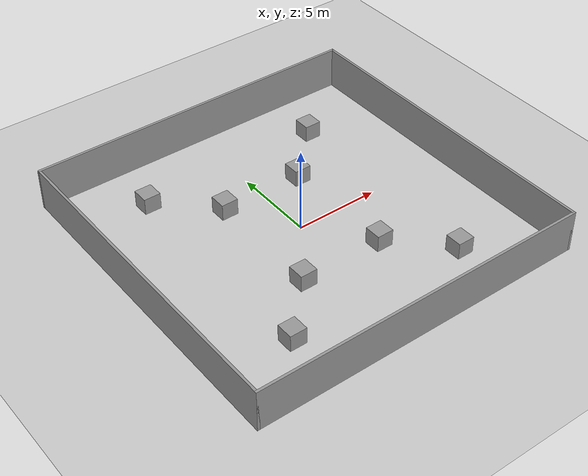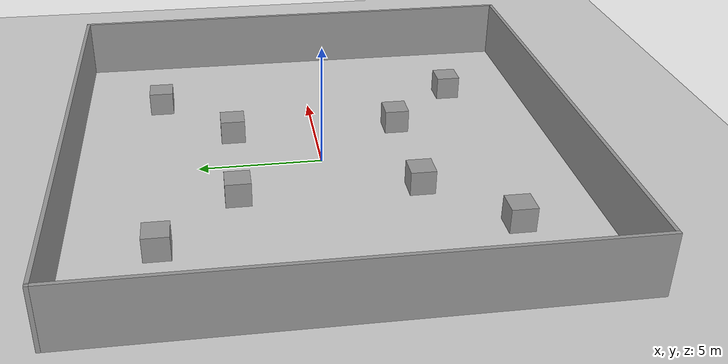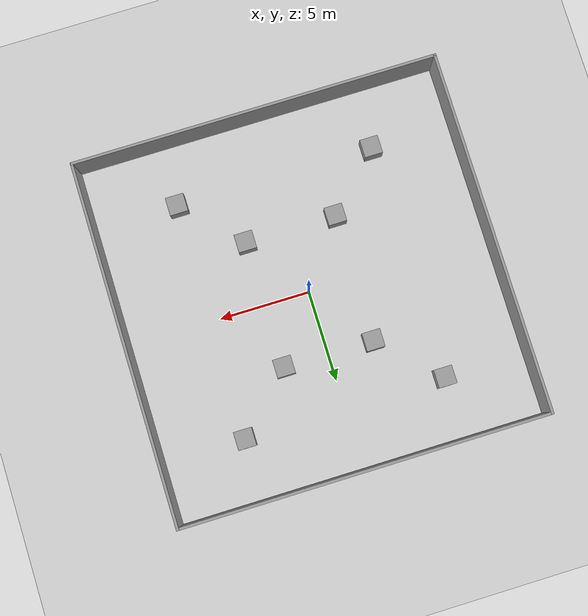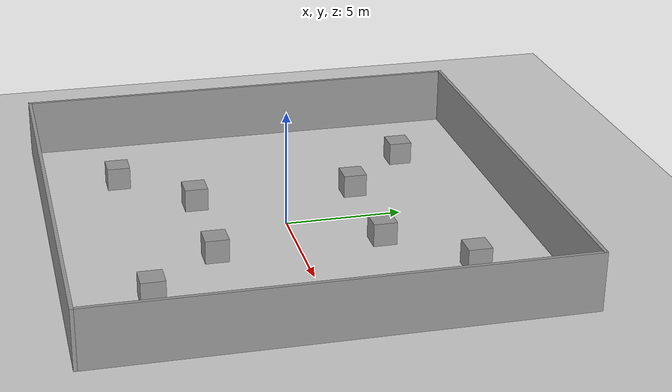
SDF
<sdf version="1.6">
 <world name="default">
  <light name="sun" type="directional">
   <pose>0 0 10 0 -0 0</pose>
   <diffuse>0.8 0.8 0.8 1</diffuse>
   <specular>0.2 0.2 0.2 1</specular>
   <attenuation>
    <range>1000</range>
    <constant>0.9</constant>
    <linear>0.01</linear>
    <quadratic>0.001</quadratic>
   </attenuation>
   <direction>-0.5 0.1 -0.9</direction>
  </light>
  <model name="ground_plane">
   <static>1</static>
   <link name="link">
    <collision name="collision">
     <geometry><plane><normal>0 0 1</normal><size>100 100</size></plane></geometry>
     <surface>
      <contact><collide_bitmask>65535</collide_bitmask></contact>
      <friction><ode><mu>100</mu><mu2>50</mu2></ode></friction>
     </surface>
    </collision>
    <visual name="visual">
     <cast_shadows>0</cast_shadows>
     <geometry><plane><normal>0 0 1</normal><size>100 100</size></plane></geometry>
     <material>
      <script><uri>file://media/materials/scripts/gazebo.material</uri><name>Gazebo/Grey</name></script>
     </material>
    </visual>
   </link>
  </model>
  <gravity>0 0 -9.8</gravity>
  <magnetic_field>6e-06 2.3e-05 -4.2e-05</magnetic_field>
  <physics name="default_physics" default="0" type="ode">
   <max_step_size>0.0015</max_step_size>
   <real_time_factor>1</real_time_factor>
   <real_time_update_rate>900</real_time_update_rate>
  </physics>
  <scene><ambient>0.4 0.4 0.4 1</ambient><background>0.7 0.7 0.7 1</background><shadows>0</shadows></scene>
  <audio><device>default</device></audio>
  <spherical_coordinates>
   <surface_model>EARTH_WGS84</surface_model>
   <latitude_deg>0</latitude_deg>
   <longitude_deg>0</longitude_deg>
   <elevation>0</elevation>
   <heading_deg>0</heading_deg>
  </spherical_coordinates>
  <model name="box">
   <pose>0.006251 0.010468 0 0 -0 0</pose>
   <link name="Wall_40">
    <collision name="Wall_40_Collision">
     <geometry><box><size>0.16 0.15 2.5</size></box></geometry>
     <pose>0 0 1.25 0 -0 0</pose>
    </collision>
    <visual name="Wall_40_Visual">
     <pose>0 0 1.25 0 -0 0</pose>
     <geometry><box><size>0.16 0.15 2.5</size></box></geometry>
     <material>
      <script><uri>file://media/materials/scripts/gazebo.material</uri><name>Gazebo/Grey</name></script>
      <ambient>1 1 1 1</ambient>
     </material>
     <meta><layer>0</layer></meta>
    </visual>
    <pose>10.045 9.925 0 0 -0 0</pose>
   </link>
   <link name="Wall_41">
    <collision name="Wall_41_Collision">
     <geometry><box><size>20.25 0.15 2.5</size></box></geometry>
     <pose>0 0 1.25 0 -0 0</pose>
    </collision>
    <visual name="Wall_41_Visual">
     <pose>0 0 1.25 0 -0 0</pose>
     <geometry><box><size>20.25 0.15 2.5</size></box></geometry>
     <material>
      <script><uri>file://media/materials/scripts/gazebo.material</uri><name>Gazebo/Grey</name></script>
      <ambient>1 1 1 1</ambient>
     </material>
     <meta><layer>0</layer></meta>
    </visual>
    <pose>0 9.925 0 0 -0 3.14159</pose>
   </link>
   <link name="Wall_42">
    <collision name="Wall_42_Collision">
     <geometry><box><size>20 0.15 2.5</size></box></geometry>
     <pose>0 0 1.25 0 -0 0</pose>
    </collision>
    <visual name="Wall_42_Visual">
     <pose>0 0 1.25 0 -0 0</pose>
     <geometry><box><size>20 0.15 2.5</size></box></geometry>
     <material>
      <script><uri>file://media/materials/scripts/gazebo.material</uri><name>Gazebo/Grey</name></script>
      <ambient>1 1 1 1</ambient>
     </material>
     <meta><layer>0</layer></meta>
    </visual>
    <pose>-10.05 0 0 0 -0 -1.5708</pose>
   </link>
   <link name="Wall_43">
    <collision name="Wall_43_Collision">
     <geometry><box><size>20.25 0.15 2.5</size></box></geometry>
     <pose>0 0 1.25 0 -0 0</pose>
    </collision>
    <visual name="Wall_43_Visual">
     <pose>0 0 1.25 0 -0 0</pose>
     <geometry><box><size>20.25 0.15 2.5</size></box></geometry>
     <material>
      <script><uri>file://media/materials/scripts/gazebo.material</uri><name>Gazebo/Grey</name></script>
      <ambient>1 1 1 1</ambient>
     </material>
     <meta><layer>0</layer></meta>
    </visual>
    <pose>0 -9.925 0 0 -0 0</pose>
   </link>
   <link name="Wall_46">
    <collision name="Wall_46_Collision">
     <geometry><box><size>20 0.15 2.5</size></box></geometry>
     <pose>0 0 1.25 0 -0 0</pose>
    </collision>
    <visual name="Wall_46_Visual">
     <pose>0 0 1.25 0 -0 0</pose>
     <geometry><box><size>20 0.15 2.5</size></box></geometry>
     <material>
      <script><uri>file://media/materials/scripts/gazebo.material</uri><name>Gazebo/Grey</name></script>
      <ambient>1 1 1 1</ambient>
     </material>
     <meta><layer>0</layer></meta>
    </visual>
    <pose>10.05 0 0 0 -0 -1.5708</pose>
   </link>
   <static>1</static>
  </model>
  <model name="unit_box_clone">
   <pose>2.46922 3.50619 0.499902 -0.000196 0 0</pose>
   <link name="link">
    <inertial>
     <mass>1</mass>
     <inertia>
      <ixx>0.166667</ixx>
      <ixy>0</ixy>
      <ixz>0</ixz>
      <iyy>0.166667</iyy>
      <iyz>0</iyz>
      <izz>0.166667</izz>
     </inertia>
    </inertial>
    <collision name="collision"><geometry><box><size>1 1 1</size></box></geometry></collision>
    <visual name="visual">
     <geometry><box><size>1 1 1</size></box></geometry>
     <material>
      <script><name>Gazebo/Grey</name><uri>file://media/materials/scripts/gazebo.material</uri></script>
     </material>
    </visual>
   </link>
  </model>
  <model name="unit_box_clone_clone">
   <pose>2.49607 -3.51466 0.499902 0.000196 -0 0</pose>
   <link name="link">
    <inertial>
     <mass>1</mass>
     <inertia>
      <ixx>0.166667</ixx>
      <ixy>0</ixy>
      <ixz>0</ixz>
      <iyy>0.166667</iyy>
      <iyz>0</iyz>
      <izz>0.166667</izz>
     </inertia>
    </inertial>
    <collision name="collision"><geometry><box><size>1 1 1</size></box></geometry></collision>
    <visual name="visual">
     <geometry><box><size>1 1 1</size></box></geometry>
     <material>
      <script><name>Gazebo/Grey</name><uri>file://media/materials/scripts/gazebo.material</uri></script>
     </material>
    </visual>
   </link>
  </model>
  <model name="unit_box_clone_clone_0">
   <pose>5.4491 -6.51975 0.5 0 -0 0</pose>
   <link name="link">
    <inertial>
     <mass>1</mass>
     <inertia>
      <ixx>0.166667</ixx>
      <ixy>0</ixy>
      <ixz>0</ixz>
      <iyy>0.166667</iyy>
      <iyz>0</iyz>
      <izz>0.166667</izz>
     </inertia>
    </inertial>
    <collision name="collision"><geometry><box><size>1 1 1</size></box></geometry></collision>
    <visual name="visual">
     <geometry><box><size>1 1 1</size></box></geometry>
     <material>
      <script><name>Gazebo/Grey</name><uri>file://media/materials/scripts/gazebo.material</uri></script>
     </material>
    </visual>
   </link>
  </model>
  <model name="unit_box_clone_clone_1">
   <pose>5.53443 6.53456 0.5 0 -0 0</pose>
   <link name="link">
    <inertial>
     <mass>1</mass>
     <inertia>
      <ixx>0.166667</ixx>
      <ixy>0</ixy>
      <ixz>0</ixz>
      <iyy>0.166667</iyy>
      <iyz>0</iyz>
      <izz>0.166667</izz>
     </inertia>
    </inertial>
    <collision name="collision"><geometry><box><size>1 1 1</size></box></geometry></collision>
    <visual name="visual">
     <geometry><box><size>1 1 1</size></box></geometry>
     <material>
      <script><name>Gazebo/Grey</name><uri>file://media/materials/scripts/gazebo.material</uri></script>
     </material>
    </visual>
   </link>
  </model>
  <model name="unit_box_clone_clone_2">
   <pose>-2.47941 3.54822 0.499902 -0.000196 -0 1e-06</pose>
   <link name="link">
    <inertial>
     <mass>1</mass>
     <inertia>
      <ixx>0.166667</ixx>
      <ixy>0</ixy>
      <ixz>0</ixz>
      <iyy>0.166667</iyy>
      <iyz>0</iyz>
      <izz>0.166667</izz>
     </inertia>
    </inertial>
    <collision name="collision"><geometry><box><size>1 1 1</size></box></geometry></collision>
    <visual name="visual">
     <geometry><box><size>1 1 1</size></box></geometry>
     <material>
      <script><name>Gazebo/Grey</name><uri>file://media/materials/scripts/gazebo.material</uri></script>
     </material>
    </visual>
   </link>
  </model>
  <model name="unit_box_clone_clone_3">
   <pose>-2.54521 -3.50091 0.5 0 -0 1e-06</pose>
   <link name="link">
    <inertial>
     <mass>1</mass>
     <inertia>
      <ixx>0.166667</ixx>
      <ixy>0</ixy>
      <ixz>0</ixz>
      <iyy>0.166667</iyy>
      <iyz>0</iyz>
      <izz>0.166667</izz>
     </inertia>
    </inertial>
    <collision name="collision"><geometry><box><size>1 1 1</size></box></geometry></collision>
    <visual name="visual">
     <geometry><box><size>1 1 1</size></box></geometry>
     <material>
      <script><name>Gazebo/Grey</name><uri>file://media/materials/scripts/gazebo.material</uri></script>
     </material>
    </visual>
   </link>
  </model>
  <model name="unit_box_clone_clone_4">
   <pose>-5.52939 6.51425 0.5 0 -0 0</pose>
   <link name="link">
    <inertial>
     <mass>1</mass>
     <inertia>
      <ixx>0.166667</ixx>
      <ixy>0</ixy>
      <ixz>0</ixz>
      <iyy>0.166667</iyy>
      <iyz>0</iyz>
      <izz>0.166667</izz>
     </inertia>
    </inertial>
    <collision name="collision"><geometry><box><size>1 1 1</size></box></geometry></collision>
    <visual name="visual">
     <geometry><box><size>1 1 1</size></box></geometry>
     <material>
      <script><name>Gazebo/Grey</name><uri>file://media/materials/scripts/gazebo.material</uri></script>
     </material>
    </visual>
   </link>
  </model>
  <model name="unit_box_clone_clone_5">
   <pose>-5.50072 -6.492 0.499902 0.000196 -0 0</pose>
   <link name="link">
    <inertial>
     <mass>1</mass>
     <inertia>
      <ixx>0.166667</ixx>
      <ixy>0</ixy>
      <ixz>0</ixz>
      <iyy>0.166667</iyy>
      <iyz>0</iyz>
      <izz>0.166667</izz>
     </inertia>
    </inertial>
    <collision name="collision"><geometry><box><size>1 1 1</size></box></geometry></collision>
    <visual name="visual">
     <geometry><box><size>1 1 1</size></box></geometry>
     <material>
      <script><name>Gazebo/Grey</name><uri>file://media/materials/scripts/gazebo.material</uri></script>
     </material>
    </visual>
   </link>
  </model>
 </world>
</sdf>
